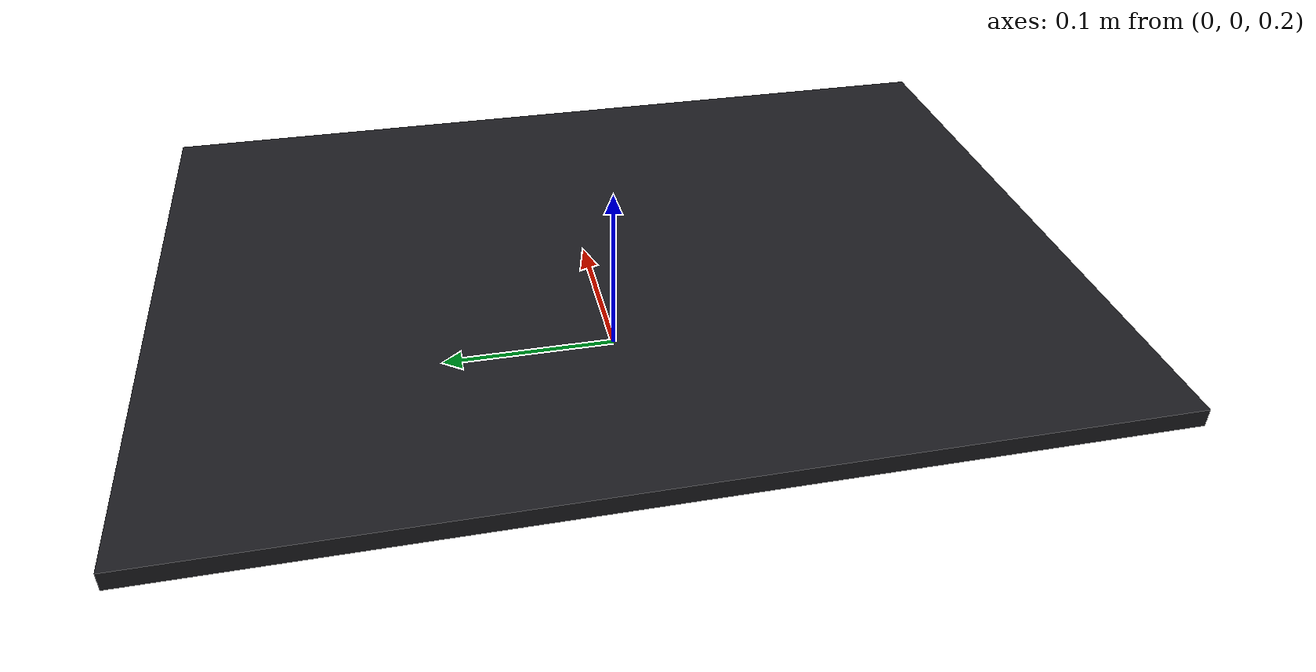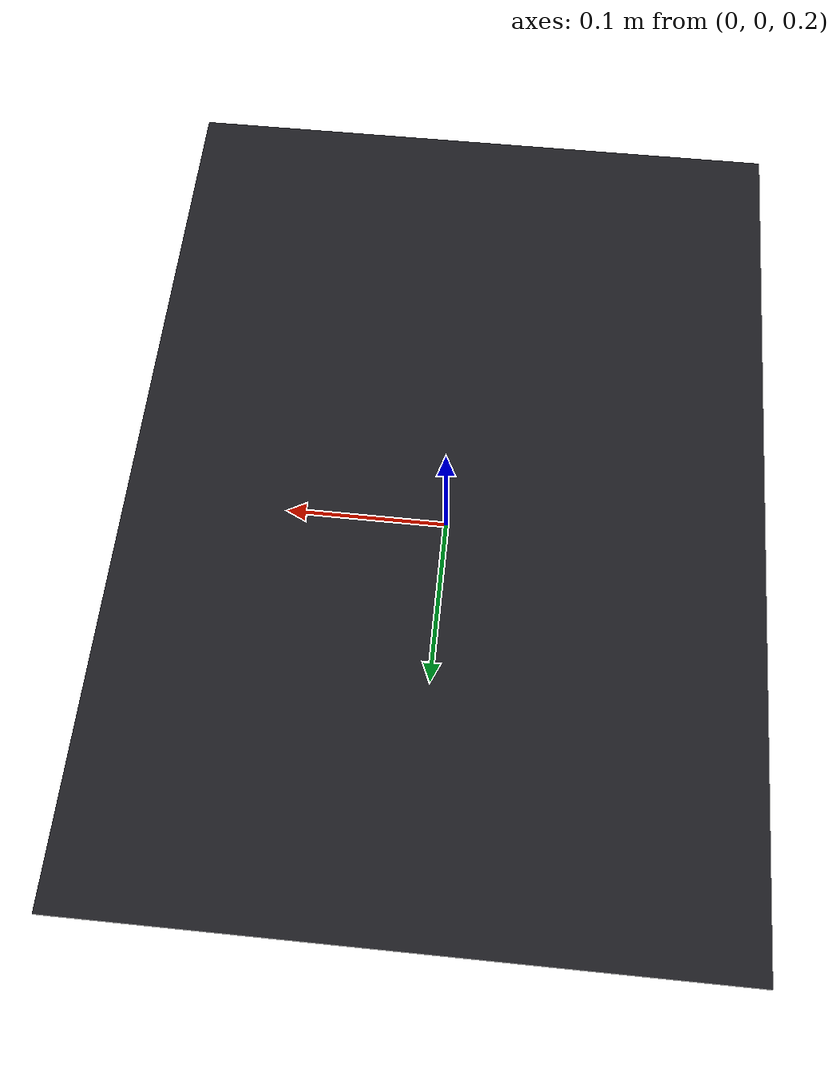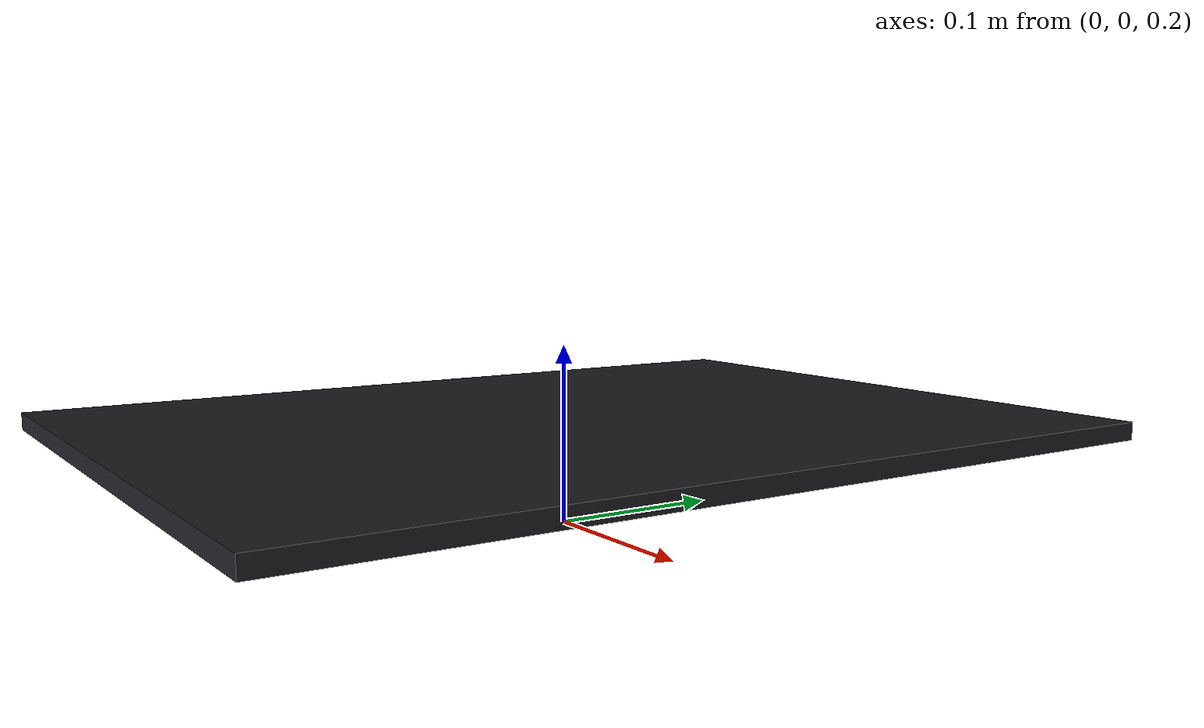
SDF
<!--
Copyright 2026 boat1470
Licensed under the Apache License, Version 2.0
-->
<?xml version="1.0" ?>
<sdf version="1.6">
  <model name="tunnel_roof">
    <static>true</static>
    <!-- Spawned on (-1.788, -0.346), the middle of the plate, so the numbers
         in full.launch.py are a position and not an offset to work out. -->
    <link name="plate">
      <pose>0 0 0.255 0 0 0</pose>
      <collision name="collision">
        <geometry>
          <box>
            <size>0.366 0.500 0.010</size>
          </box>
        </geometry>
      </collision>
      <visual name="visual">
        <geometry>
          <box>
            <size>0.366 0.500 0.010</size>
          </box>
        </geometry>
        <material>
          <ambient>0.05 0.05 0.06 1</ambient>
          <diffuse>0.12 0.12 0.14 1</diffuse>
          <specular>0.01 0.01 0.01 1</specular>
        </material>
      </visual>
    </link>
  </model>
</sdf>
